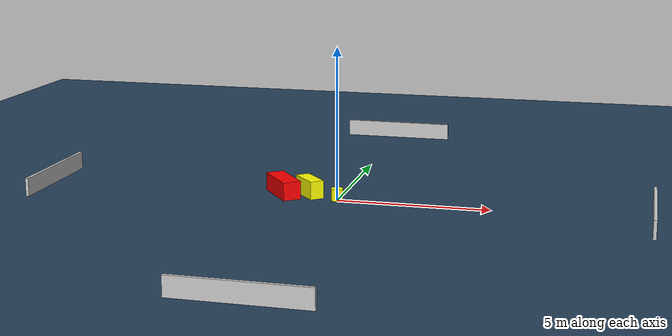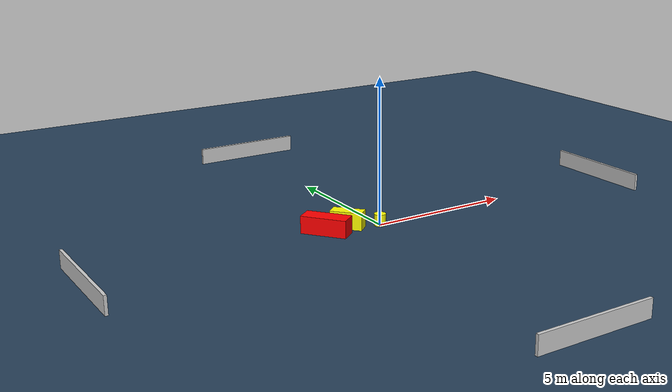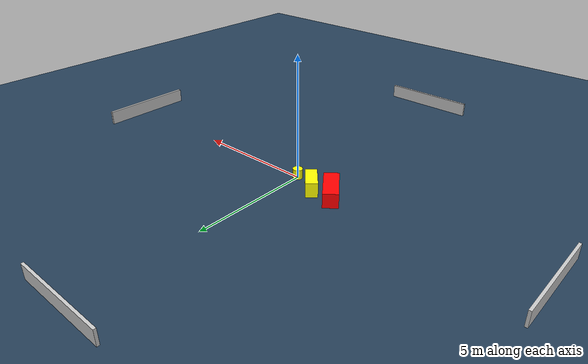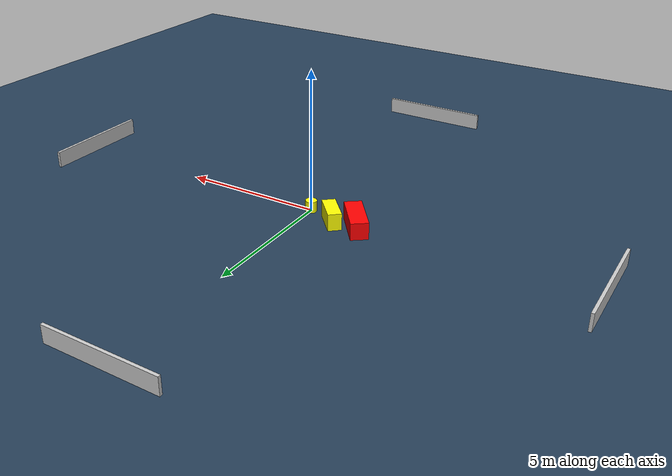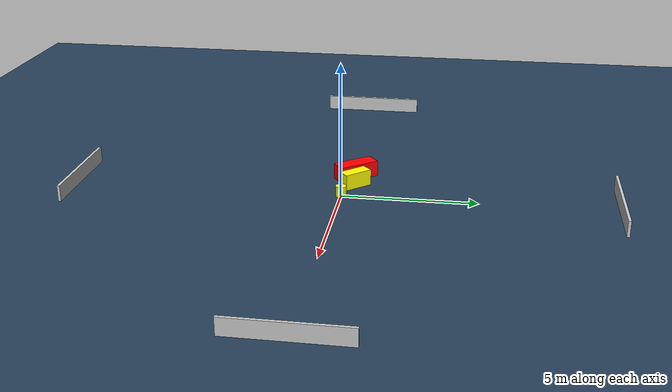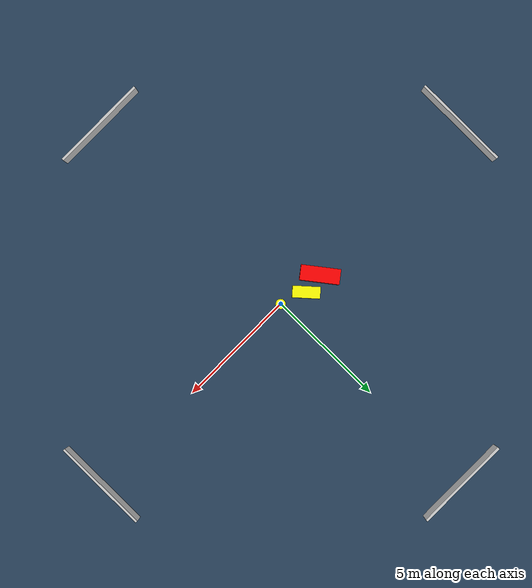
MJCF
<?xml version="1.0" ?>
<mujoco model="generated_environment">
  <option timestep="0.01" integrator="RK4" cone="elliptic"/>
  <default>
    <geom density="1"/>
  </default>
  <asset>
    <texture builtin="gradient" height="3072" name="skybox" rgb1="0.3 0.5 0.7" rgb2="0 0 0" type="skybox" width="512"/>
    <texture builtin="checker" height="300" name="groundplane" rgb1="0.2 0.3 0.4" rgb2="0.1 0.2 0.3" type="2d" width="300"/>
    <material name="groundplane" reflectance="0.2" texrepeat="5 5" texture="groundplane"/>
  </asset>
  <worldbody>
    <light dir="0 0 -1" directional="true" pos="0 0 1.5"/>
    <geom condim="3" friction="0.5 0.005 0.001" material="groundplane" name="floor" pos="0 0 0" size="0 0 0.05" type="plane"/>
    <body name="walls">
      <geom name="wall_1" condim="4" pos="-10.0 0.0 0.3" rgba="0.800000011920929 0.800000011920929 0.800000011920929 1.0" size="0.05 2.0 0.3" type="box"/>
      <geom name="wall_2" condim="4" pos="10.0 0.0 0.3" rgba="0.800000011920929 0.800000011920929 0.800000011920929 1.0" size="0.05 2.0 0.3" type="box"/>
      <geom name="wall_3" condim="4" pos="0.0 -10.0 0.3" rgba="0.800000011920929 0.800000011920929 0.800000011920929 1.0" size="2.0 0.05 0.3" type="box"/>
      <geom name="wall_4" condim="4" pos="0.0 10.0 0.3" rgba="0.800000011920929 0.800000011920929 0.800000011920929 1.0" size="2.0 0.05 0.3" type="box"/>
    </body>
    <body name="robot">
      <joint name="joint_x" type="slide" pos="0 0 0" axis="1 0 0"/>
      <joint name="joint_y" type="slide" pos="0 0 0" axis="0 1 0"/>
      <geom name="robot" type="cylinder" pos="0.0 0.0 0.2" size="0.2 0.2 0.0" mass="5.0" friction="1.0 0.005 0.0001" condim="4" rgba="1.0 1.0 0.0 1.0"/>
    </body>
    <body name="obstacle_1_movable">
      <geom name="obstacle_1_movable" condim="4" pos="-1.0305145291456106 0.3847230333783613 0.3" euler="0 0 131.80047066525387" friction="0.0 0.005 0.001" rgba="1.0 1.0 0.0 1.0" size="0.5494001453157 0.23409573289602256 0.3" type="box" mass="0.1"/>
      <joint type="free"/>
    </body>
    <body name="obstacle_2_static">
      <geom name="obstacle_2_static" condim="4" pos="-1.901750867126078 0.28592460461249397 0.3" euler="0 0 217.5131190851967" friction="0.0 0.005 0.001" rgba="1.0 0.0 0.0 1.0" size="0.3026581066299117 0.7874830095479137 0.3" type="box"/>
    </body>
  </worldbody>
  <actuator>
    <motor name="actuator_x" joint="joint_x" gear="1" ctrlrange="-1 1"/>
    <motor name="actuator_y" joint="joint_y" gear="1" ctrlrange="-1 1"/>
  </actuator>
</mujoco>
